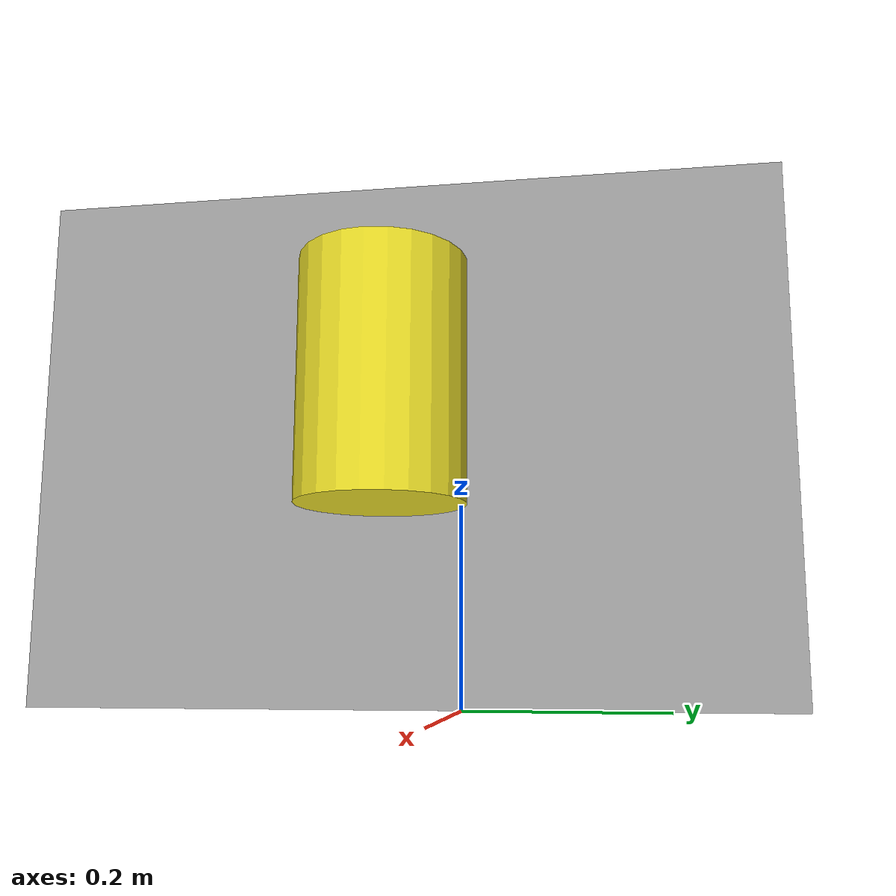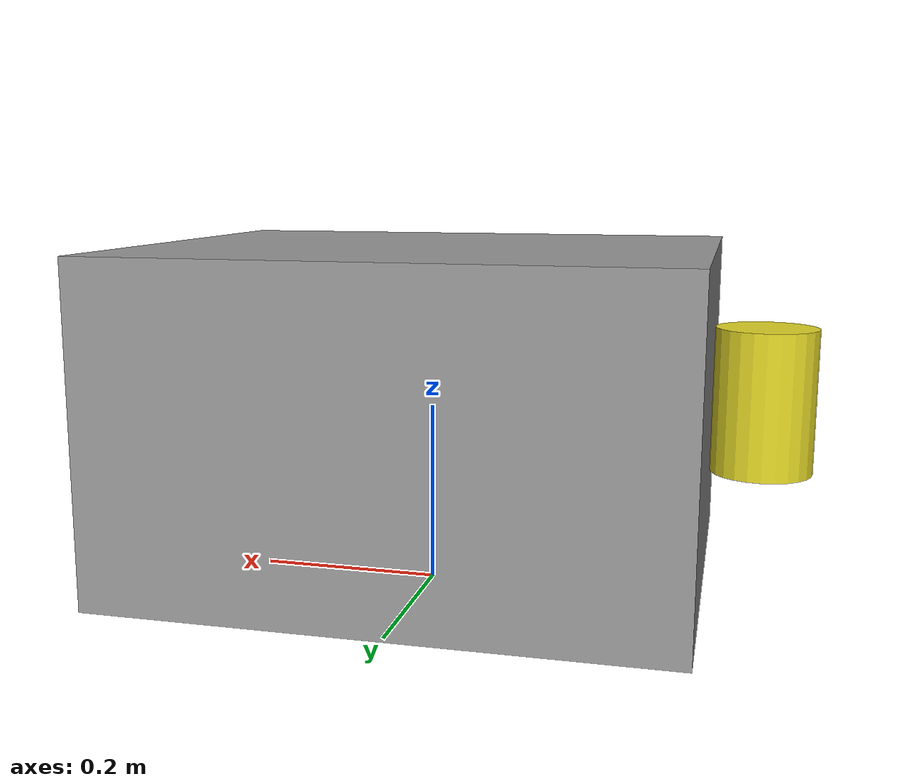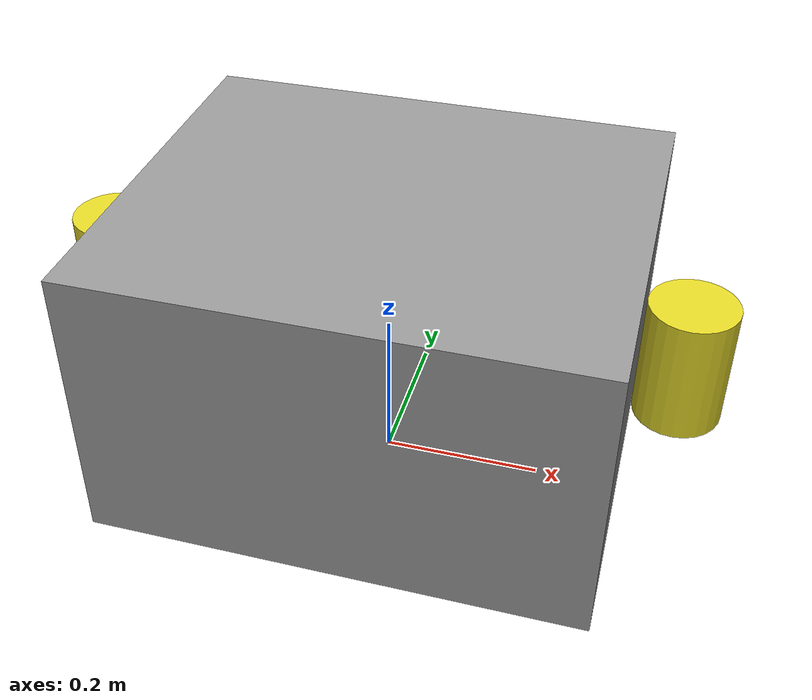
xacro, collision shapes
<?xml version="1.0" ?>
<robot name="mpo_700" xmlns:xacro="http://www.ros.org/wiki/xacro">

  <!-- MATERIALS -->
  <xacro:include filename="$(find chapter5_tutorials)/mpo_700/xacros/mpo_700_materials.xacro" />

  <!-- BODY -->
  <xacro:include filename="$(find chapter5_tutorials)/mpo_700/xacros/mpo_700_body.xacro" />

  <!-- SENSORS -->
  <xacro:include filename="$(find chapter5_tutorials)/mpo_700/xacros/sick_s300_laser.xacro" />

  <!--xacro:include filename="$(find neo_mpo_700)/robot_model/mpo_700/xacros/mpo_700_gazebo.xacro" /-->

  <!-- Base Macro-->
  <xacro:mpo_700_base name="base_link">
  </xacro:mpo_700_base>

  <!-- Sensors -->
  <xacro:sick_s300_laser_v0 name="sick_s300_laser_front" parent="base_link" ros_topic="sick_s300_front/scan">
  	<origin xyz="0.360 0 0.223" rpy="3.14 0 0" />
  </xacro:sick_s300_laser_v0>

  <xacro:sick_s300_laser_v0 name="sick_s300_laser_back" parent="base_link" ros_topic="sick_s300_back/scan">
  	<origin xyz="-0.360 0 0.223" rpy="3.14 0 -3.14" />
  </xacro:sick_s300_laser_v0>

</robot>

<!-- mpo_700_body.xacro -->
<robot xmlns:xacro="http://www.ros.org/wiki/xacro" name="mpo_700">

  <xacro:macro name="mpo_700_base" params="name">
    <link name="${name}">
      <inertial>
        <mass value="30" />
        <origin xyz="0 0 0" rpy="0 0 0"/>
        <inertia ixx="1.71402" ixy="0.0" ixz="0.0"
                 iyy="0.8856" iyz="0.0"
                 izz="2.5725" />
      </inertial>
      <visual>
        <origin xyz="0.0 0.0 0.021" rpy="0 0 1.571" />
        <geometry>
            <mesh filename="package://chapter5_tutorials/mpo_700/meshes/MPO-700.stl" scale="0.001 0.001 0.001"/>
        </geometry>
        <material name="Neobotix/Grey" />
      </visual>
      <collision>
        <origin xyz="0. 0. 0.2" rpy="0 0 0" />
        <geometry>

          <box size="0.610 0.515 0.360" />
        </geometry>
      </collision>
    </link>

  </xacro:macro>

</robot>

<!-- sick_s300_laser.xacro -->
<robot xmlns:xacro="http://www.ros.org/wiki/xacro" name="mpo_700">

  <xacro:macro name="sick_s300_laser_v0" params="name parent *origin ros_topic">
    <joint name="${name}_joint" type="fixed">
      <axis xyz="0 1 0" />
      <insert_block name="origin" />
      <parent link="${parent}"/>
      <child link="${name}_link"/>
    </joint>
    <link name="${name}_link" type="laser">
      <inertial>
        <mass value="0.001" />
        <origin xyz="0 0 0" rpy="0 0 0" />
        <inertia ixx="0.0001" ixy="0" ixz="0" iyy="0.000001" iyz="0" izz="0.0001" />
      </inertial>
      <visual>
        <origin xyz="0 0 0.0" rpy="0 0 -1.57" />
        <geometry>
          <mesh filename="package://chapter5_tutorials/mpo_700/meshes/MPO-700-SICK.STL" />
        </geometry>
        <material name="Neobotix/Yellow" />
      </visual>
      <collision>
        <origin xyz="0 0 0" rpy="0 0 0" />
        <geometry>
          <cylinder length="0.154" radius="0.053" />
        </geometry>
      </collision>
    </link>
  </xacro:macro>

</robot>
